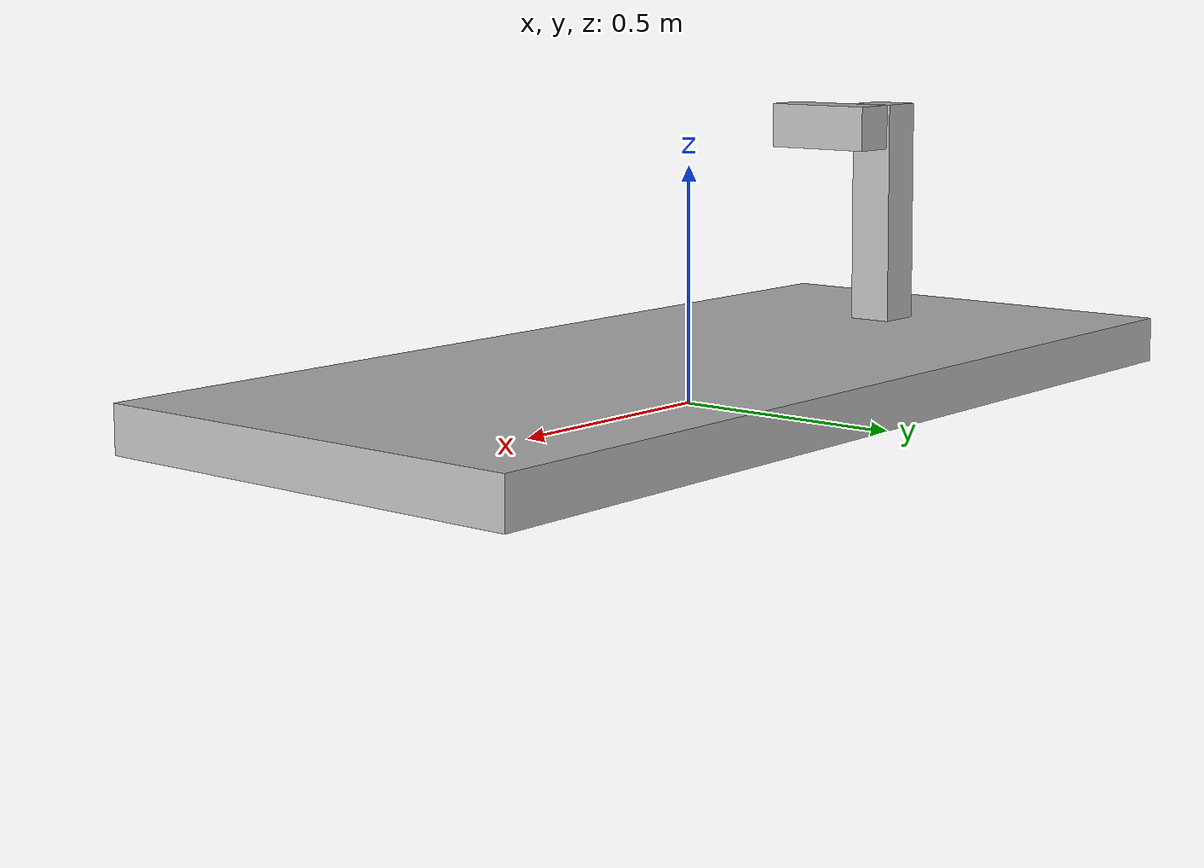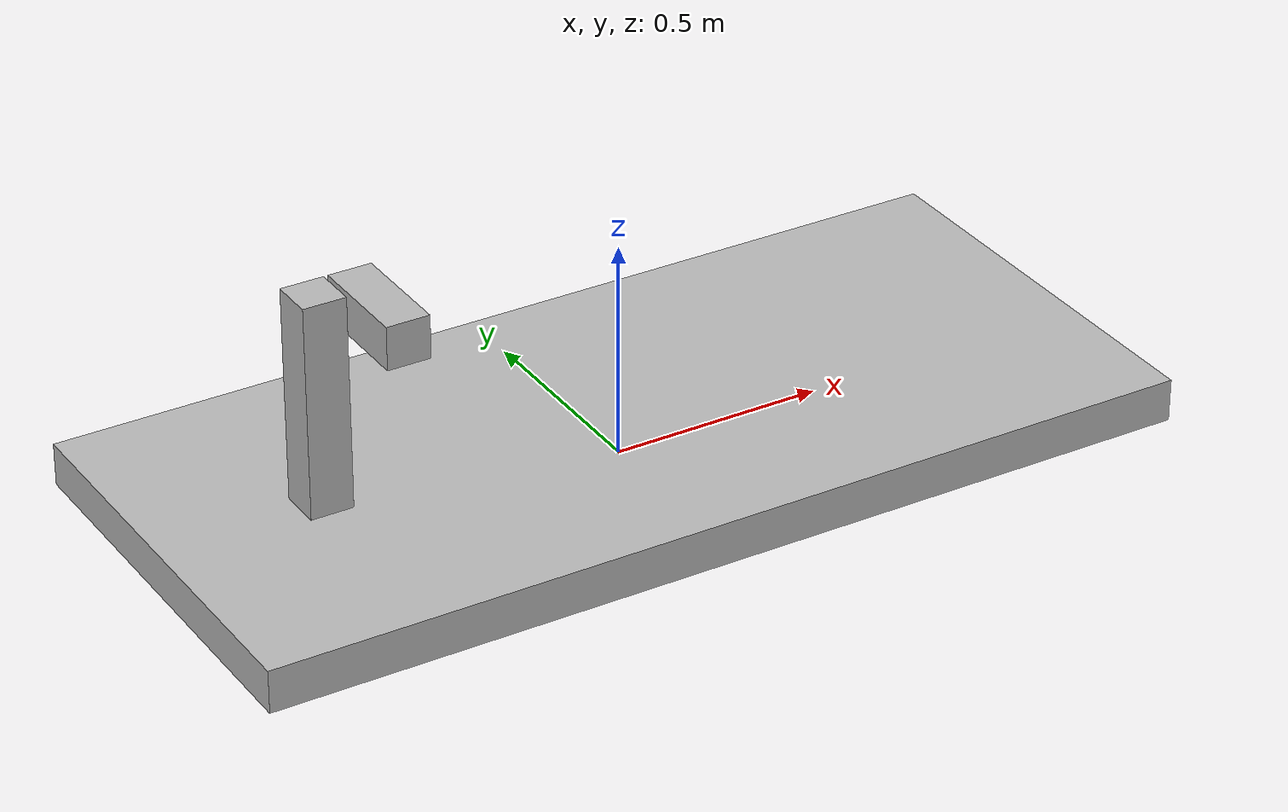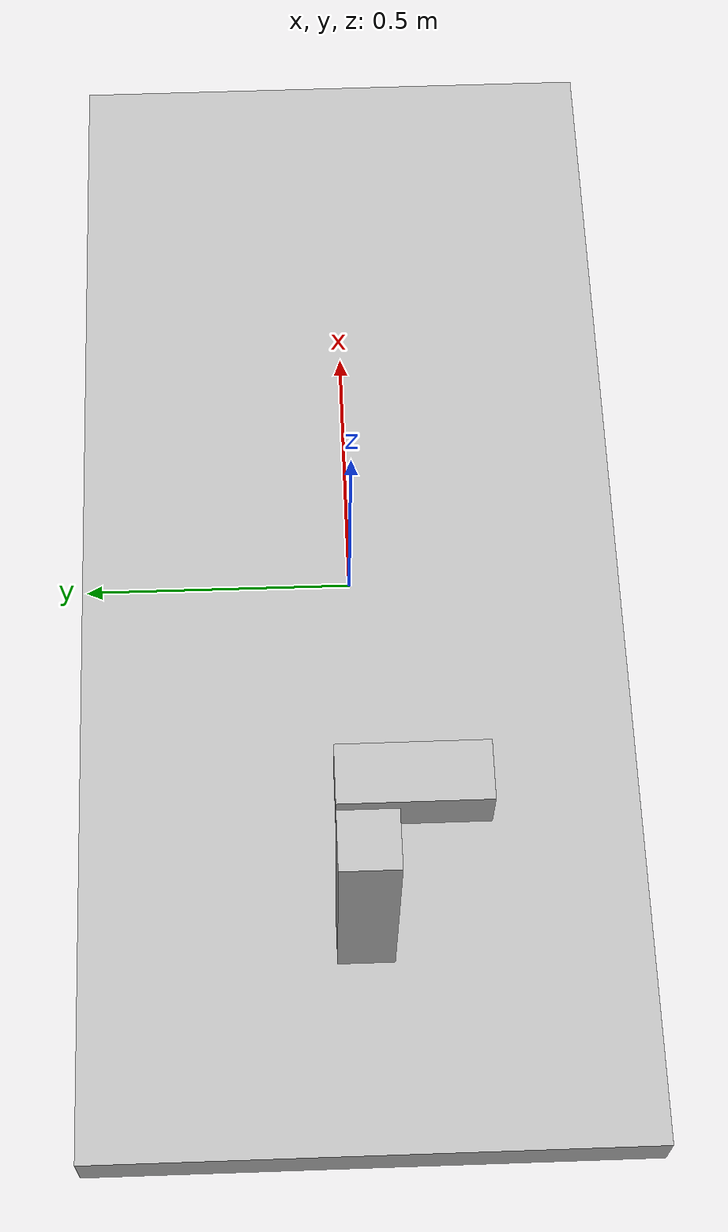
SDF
<?xml version="1.0"?>
<sdf version="1.5">
<model name="revolute_demo">
    <link name="heavy_base">
        <!-- position the base such that the bottom touches the floor -->
        <pose>0 0 0.05 0 0 0</pose>
        <inertial>
            <mass>100</mass> <!-- kg -->
            <inertia>
                <!-- (mass / 12) * (y*y + z*z) -->
                <ixx>8.4167</ixx>
                <ixy>0</ixy>
                <ixz>0</ixz>
                <!-- (mass / 12) * (x*x + z*z) -->
                <iyy>40.417</iyy>
                <iyz>0</iyz>
                <!-- (mass / 12) * (y*y + x*x) -->
                <izz>48.667</izz>
            </inertia>
        </inertial>
        <!-- Same geometry as visual -->
        <collision name="heavy_base_collision">
            <geometry>
                <box>
                    <size>2.2 1 0.1</size>
                </box>
            </geometry>
        </collision>
        <!-- Same geometry as collision -->
        <visual name="heavy_base_visual">
            <geometry>
                <box>
                    <size>2.2 1 0.1</size>
                </box>
            </geometry>
            <material>
                <script>
                    <uri>model://demo_joint_types/materials/scripts</uri>
                    <uri>model://demo_joint_types/materials/textures</uri>
                    <name>demo_joint_types/legend</name>
                </script>
            </material>
        </visual>
    </link>

    <link name="revolute_base">
        <!-- Put the bottom of the child on top of the parent
             z = 0.5 * revolute_base_sz_z + heavy_base_sz_z
             x = put it near revolute label on heavy base
             -->
        <pose >-.72 0 0.35 0 0 0</pose>
        <inertial>
            <inertia>
                <!-- (mass / 12) * (y*y + z*z) -->
                <ixx>0.021667</ixx>
                <ixy>0</ixy>
                <ixz>0</ixz>
                <!-- (mass / 12) * (x*x + z*z) -->
                <iyy>0.021667</iyy>
                <iyz>0</iyz>
                <!-- (mass / 12) * (y*y + x*x) -->
                <izz>0.0016667</izz>
            </inertia>
        </inertial>
        <!-- Same geometry as visual -->
        <collision name="revolute_base_collision">
            <geometry>
                <box>
                    <size>0.1 0.1 0.5</size>
                </box>
            </geometry>
        </collision>
        <!-- Same geometry as collision -->
        <visual name="revolute_base_visual">
            <geometry>
                <box>
                    <size>0.1 0.1 0.5</size>
                </box>
            </geometry>
            <material>
                <script>
                    <uri>model://demo_joint_types/materials/scripts</uri>
                    <uri>model://demo_joint_types/materials/textures</uri>
                    <name>demo_joint_types/parent</name>
                </script>
            </material>
        </visual>
    </link>

    <joint name="revolute_base_to_heavy_base" type="fixed">
        <parent>heavy_base</parent>
        <child>revolute_base</child>
    </joint>

    <link name="revolute_arm">
        <pose >-.61 -0.075 0.55 0 0 0</pose>
        <inertial>
            <inertia>
                <!-- (mass / 12) * (y*y + z*z) -->
                <ixx>0.0060417</ixx>
                <ixy>0</ixy>
                <ixz>0</ixz>
                <!-- (mass / 12) * (x*x + z*z) -->
                <iyy>0.0016667</iyy>
                <iyz>0</iyz>
                <!-- (mass / 12) * (y*y + x*x) -->
                <izz>0.0060417</izz>
            </inertia>
        </inertial>
        <!-- Same geometry as visual -->
        <collision name="revolute_arm_collision">
            <geometry>
                <box>
                    <size>0.1 0.25 0.1</size>
                </box>
            </geometry>
        </collision>
        <!-- Same geometry as collision -->
        <visual name="revolute_arm_visual">
            <geometry>
                <box>
                    <size>0.1 0.25 0.1</size>
                </box>
            </geometry>
            <material>
                <script>
                    <uri>model://demo_joint_types/materials/scripts</uri>
                    <uri>model://demo_joint_types/materials/textures</uri>
                    <name>demo_joint_types/child</name>
                </script>
            </material>
        </visual>
    </link>

    <joint name="revolute_demo" type="revolute">
        <parent>revolute_base</parent>
        <child>revolute_arm</child>
        <axis>
            <xyz>1 0 0</xyz>
        </axis>
        <!-- Move the joint to the size a bit to be more like an arm
             y = 0.5 * relative_arm_sz_y - fudge(0.05) -->
        <pose>0 0.075 0 0 0 0</pose>
    </joint>
</model>
</sdf>
